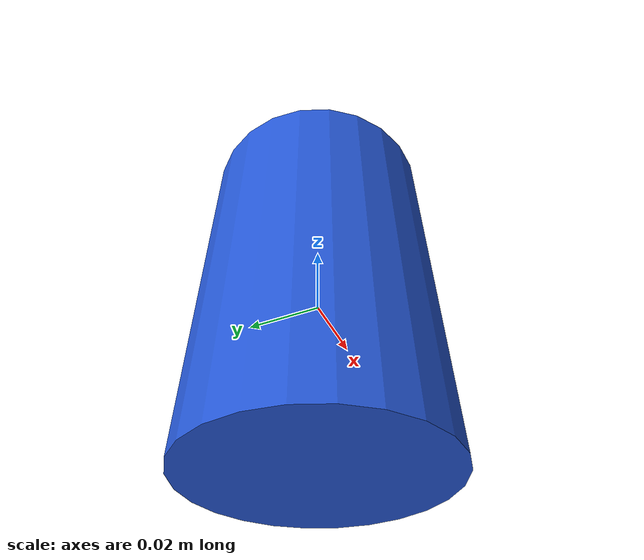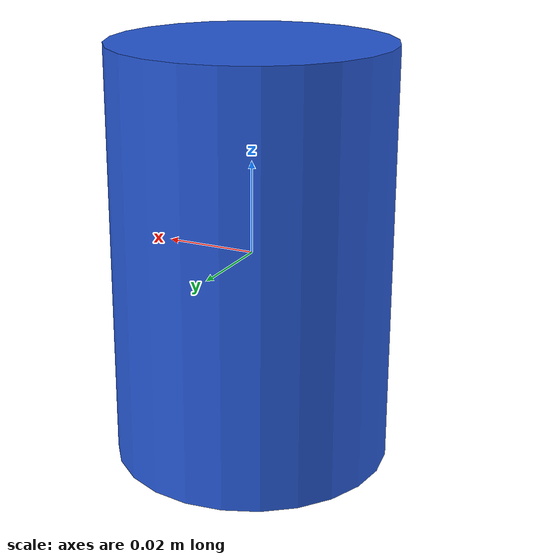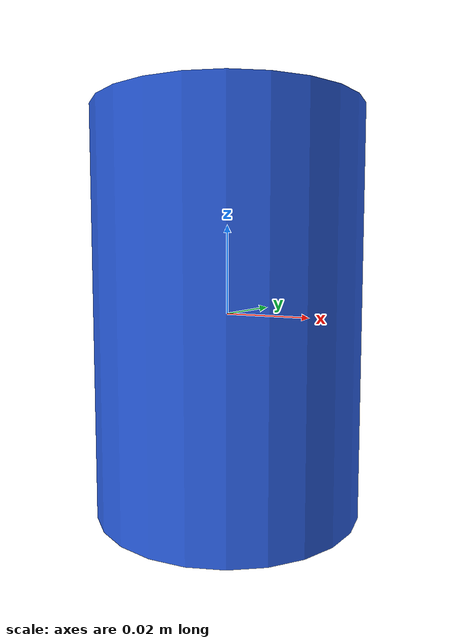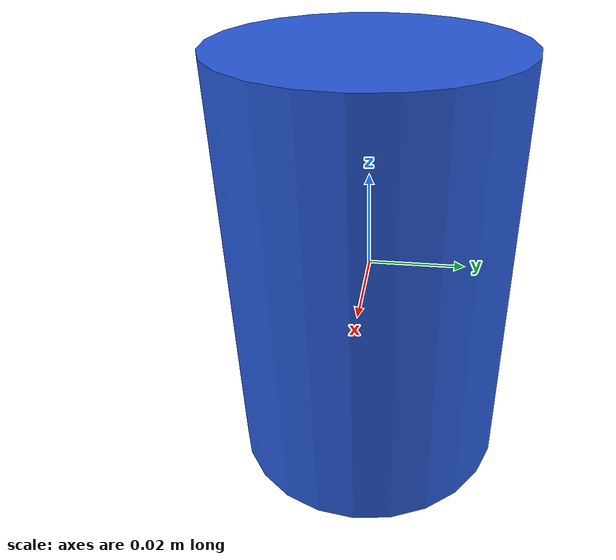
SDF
<?xml version="1.0"?>
<!-- "Cup": 6 cm diameter x 9 cm cylinder, 120 g. Diameter fits the Franka
     hand's 8 cm opening; grasp it around the middle. -->
<sdf version="1.6">
  <model name="pick_cup_blue">
    <link name="link">
      <inertial>
        <mass>0.12</mass>
        <inertia>
          <ixx>1.08e-4</ixx><iyy>1.08e-4</iyy><izz>5.4e-5</izz>
          <ixy>0</ixy><ixz>0</ixz><iyz>0</iyz>
        </inertia>
      </inertial>
      <collision name="collision">
        <geometry><cylinder><radius>0.03</radius><length>0.09</length></cylinder></geometry>
        <surface>
          <friction><ode><mu>1.5</mu><mu2>1.5</mu2></ode></friction>
          <contact><ode><kp>1e6</kp><kd>100</kd><min_depth>0.001</min_depth><max_vel>0.1</max_vel></ode></contact>
        </surface>
      </collision>
      <visual name="visual">
        <geometry><cylinder><radius>0.03</radius><length>0.09</length></cylinder></geometry>
        <material>
          <ambient>0.1 0.25 0.7 1</ambient>
          <diffuse>0.15 0.35 0.85 1</diffuse>
        </material>
      </visual>
    </link>
  </model>
</sdf>
